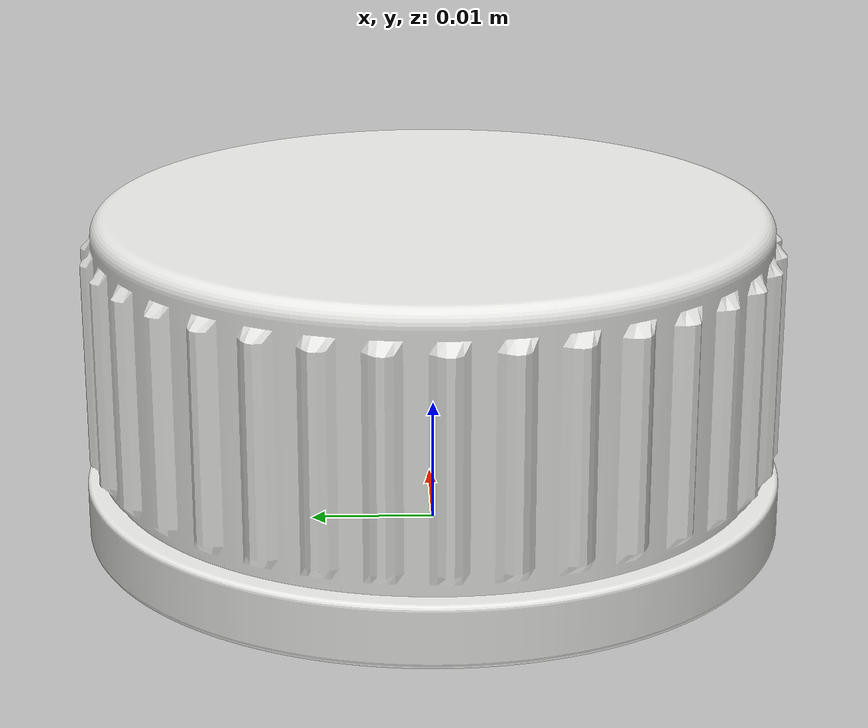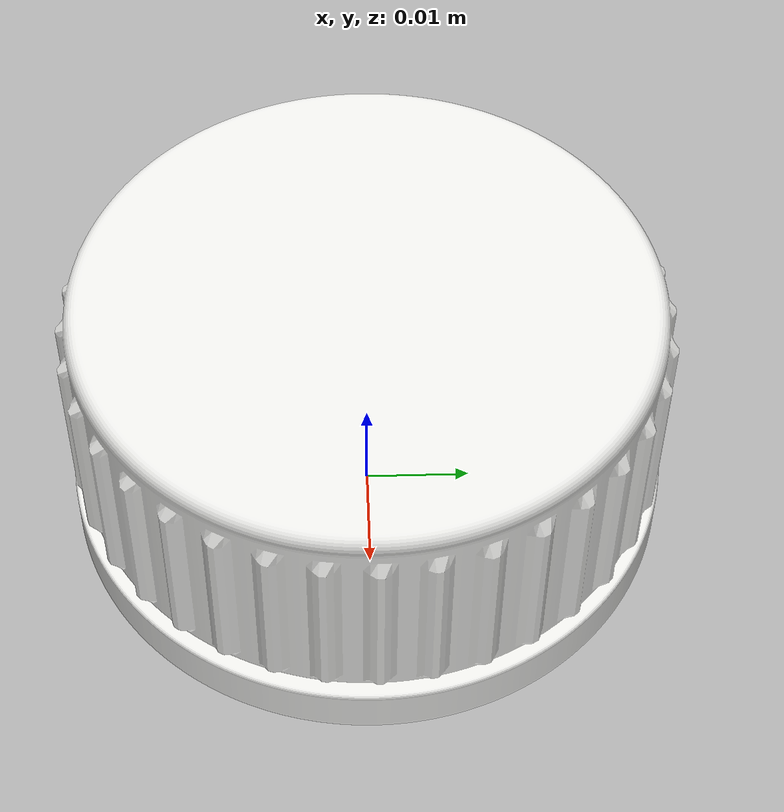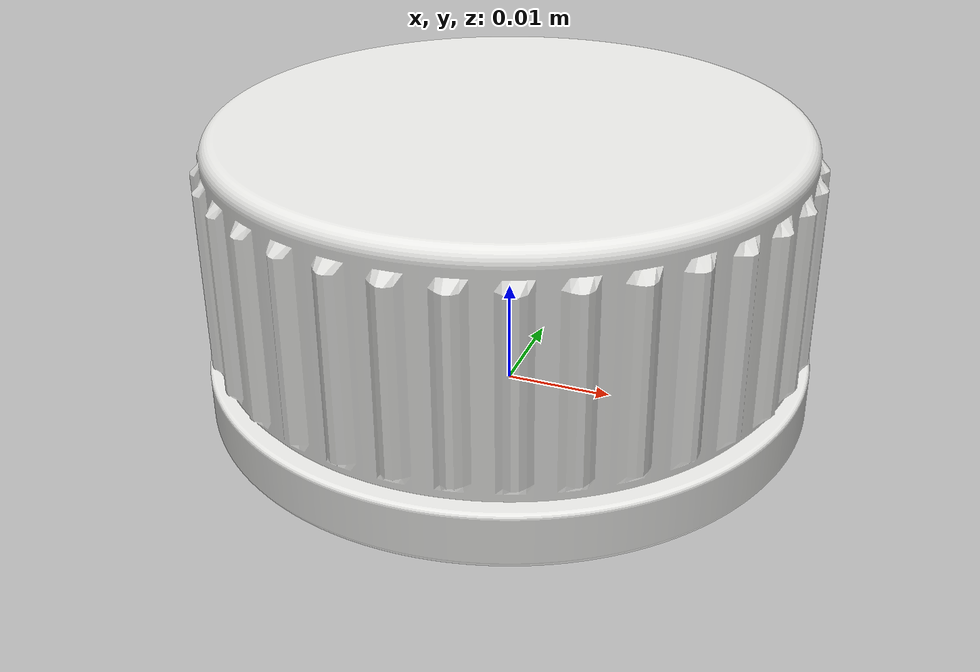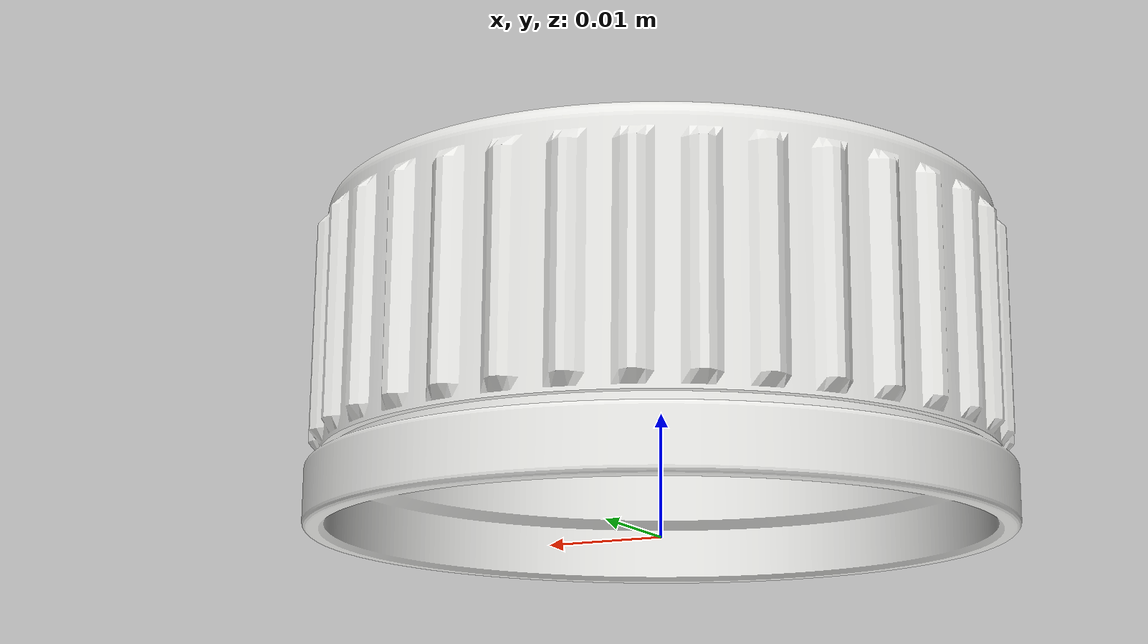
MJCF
<mujoco model="cap_1l">
  <asset>
    <mesh name="cap_1l_00" file="cap_1l_00.obj" inertia="exact"/>
  </asset>
  <worldbody>
    <body name="cap_1l">
      <geom type="mesh" mesh="cap_1l_00" rgba="0.920 0.920 0.910 1.000" density="900"/>  <!-- PP_blanco_tapon -->
    </body>
  </worldbody>
</mujoco>
